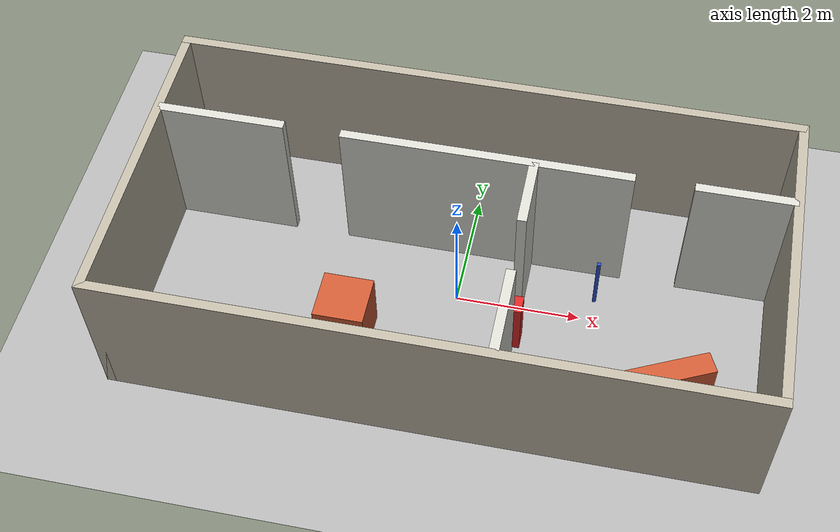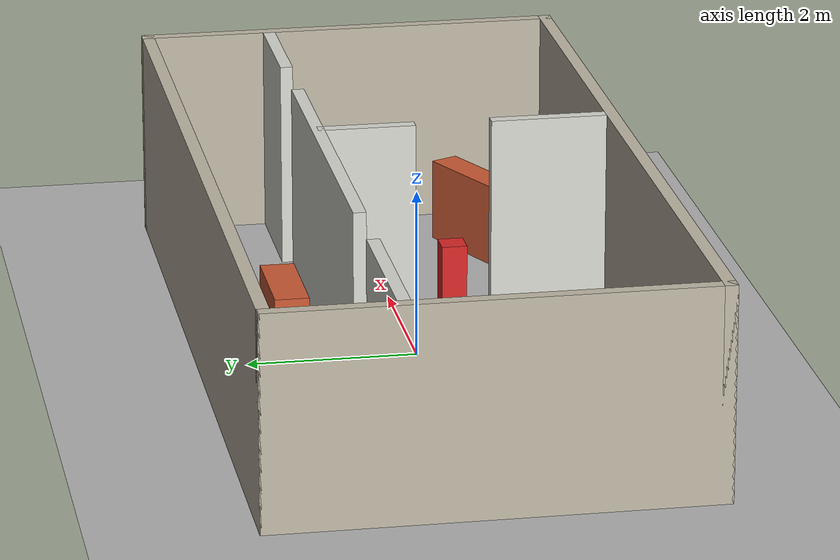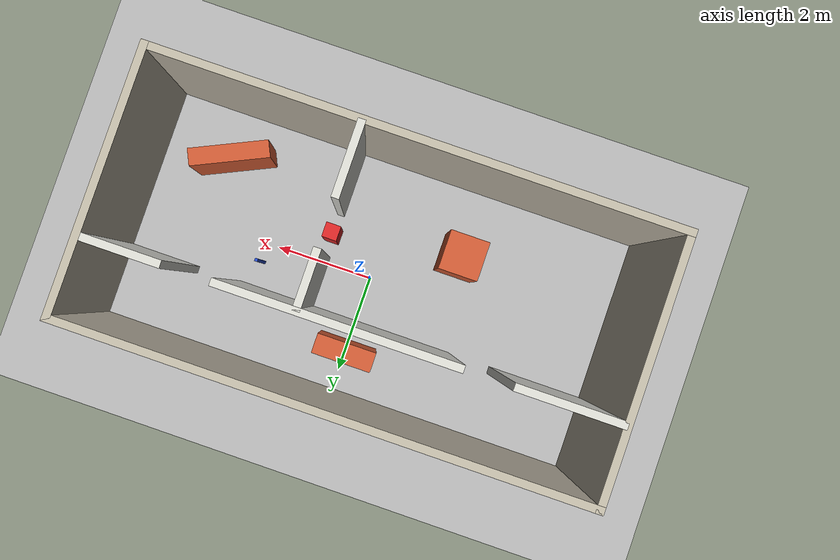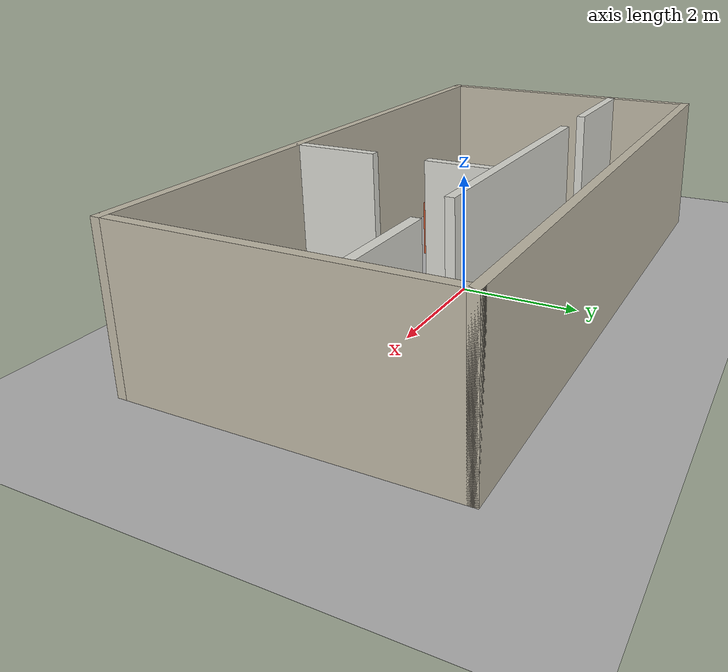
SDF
<?xml version="1.0" ?>
<sdf version="1.9">
  <world name="default">

    <plugin filename="gz-sim-physics-system" name="gz::sim::systems::Physics"/>
    <plugin filename="gz-sim-user-commands-system" name="gz::sim::systems::UserCommands"/>
    <plugin filename="gz-sim-scene-broadcaster-system" name="gz::sim::systems::SceneBroadcaster"/>

    <plugin filename="gz-sim-sensors-system" name="gz::sim::systems::Sensors">
      <render_engine>ogre2</render_engine>
    </plugin>

    <light name="sun" type="directional">
      <cast_shadows>true</cast_shadows>
      <pose>0 0 10 0 0 0</pose>
      <diffuse>0.8 0.8 0.8 1</diffuse>
      <specular>0.2 0.2 0.2 1</specular>
      <direction>-0.5 0.1 -0.9</direction>
    </light>

    <model name="ground_plane">
      <static>true</static>
      <link name="link">
        <collision name="collision">
          <geometry>
            <plane>
              <normal>0 0 1</normal>
              <size>100 100</size>
            </plane>
          </geometry>
        </collision>
        <visual name="visual">
          <geometry>
            <plane>
              <normal>0 0 1</normal>
              <size>100 100</size>
            </plane>
          </geometry>
          <material>
            <ambient>0.7 0.7 0.7 1</ambient>
            <diffuse>0.7 0.7 0.7 1</diffuse>
          </material>
        </visual>
      </link>
    </model>

    <model name="wall_south">
      <static>true</static>
      <pose>0 -2.5 1.25 0 0 0</pose>
      <link name="link">
        <collision name="collision"><geometry><box><size>10.15 0.15 2.5</size></box></geometry></collision>
        <visual name="visual">
          <geometry><box><size>10.15 0.15 2.5</size></box></geometry>
          <material><ambient>0.75 0.72 0.65 1</ambient><diffuse>0.75 0.72 0.65 1</diffuse></material>
        </visual>
      </link>
    </model>

    <model name="wall_north">
      <static>true</static>
      <pose>0 2.5 1.25 0 0 0</pose>
      <link name="link">
        <collision name="collision"><geometry><box><size>10.15 0.15 2.5</size></box></geometry></collision>
        <visual name="visual">
          <geometry><box><size>10.15 0.15 2.5</size></box></geometry>
          <material><ambient>0.75 0.72 0.65 1</ambient><diffuse>0.75 0.72 0.65 1</diffuse></material>
        </visual>
      </link>
    </model>

    <model name="wall_west">
      <static>true</static>
      <pose>-5 0 1.25 0 0 0</pose>
      <link name="link">
        <collision name="collision"><geometry><box><size>0.15 5.15 2.5</size></box></geometry></collision>
        <visual name="visual">
          <geometry><box><size>0.15 5.15 2.5</size></box></geometry>
          <material><ambient>0.75 0.72 0.65 1</ambient><diffuse>0.75 0.72 0.65 1</diffuse></material>
        </visual>
      </link>
    </model>

    <model name="wall_east">
      <static>true</static>
      <pose>5 0 1.25 0 0 0</pose>
      <link name="link">
        <collision name="collision"><geometry><box><size>0.15 5.15 2.5</size></box></geometry></collision>
        <visual name="visual">
          <geometry><box><size>0.15 5.15 2.5</size></box></geometry>
          <material><ambient>0.75 0.72 0.65 1</ambient><diffuse>0.75 0.72 0.65 1</diffuse></material>
        </visual>
      </link>
    </model>

    <model name="divider_c_1">
      <static>true</static>
      <pose>-3.975 1.0 1.25 0 0 0</pose>
      <link name="link">
        <collision name="collision"><geometry><box><size>2.05 0.15 2.5</size></box></geometry></collision>
        <visual name="visual">
          <geometry><box><size>2.05 0.15 2.5</size></box></geometry>
          <material><ambient>0.85 0.85 0.82 1</ambient><diffuse>0.85 0.85 0.82 1</diffuse></material>
        </visual>
      </link>
    </model>

    <model name="divider_c_2">
      <static>true</static>
      <pose>0.25 1.0 1.25 0 0 0</pose>
      <link name="link">
        <collision name="collision"><geometry><box><size>4.6 0.15 2.5</size></box></geometry></collision>
        <visual name="visual">
          <geometry><box><size>4.6 0.15 2.5</size></box></geometry>
          <material><ambient>0.85 0.85 0.82 1</ambient><diffuse>0.85 0.85 0.82 1</diffuse></material>
        </visual>
      </link>
    </model>

    <model name="divider_c_3">
      <static>true</static>
      <pose>4.225 1.0 1.25 0 0 0</pose>
      <link name="link">
        <collision name="collision"><geometry><box><size>1.55 0.15 2.5</size></box></geometry></collision>
        <visual name="visual">
          <geometry><box><size>1.55 0.15 2.5</size></box></geometry>
          <material><ambient>0.85 0.85 0.82 1</ambient><diffuse>0.85 0.85 0.82 1</diffuse></material>
        </visual>
      </link>
    </model>

    <model name="divider_ab_1">
      <static>true</static>
      <pose>1.0 -1.775 1.25 0 0 0</pose>
      <link name="link">
        <collision name="collision"><geometry><box><size>0.15 1.45 2.5</size></box></geometry></collision>
        <visual name="visual">
          <geometry><box><size>0.15 1.45 2.5</size></box></geometry>
          <material><ambient>0.85 0.85 0.82 1</ambient><diffuse>0.85 0.85 0.82 1</diffuse></material>
        </visual>
      </link>
    </model>

    <model name="divider_ab_2">
      <static>true</static>
      <pose>1.0 0.425 1.25 0 0 0</pose>
      <link name="link">
        <collision name="collision"><geometry><box><size>0.15 1.15 2.5</size></box></geometry></collision>
        <visual name="visual">
          <geometry><box><size>0.15 1.15 2.5</size></box></geometry>
          <material><ambient>0.85 0.85 0.82 1</ambient><diffuse>0.85 0.85 0.82 1</diffuse></material>
        </visual>
      </link>
    </model>

    <!-- 走廊中段横躺 1.2 m：南侧只剩 0.275 m（过不去），北侧 0.675 m -->
    <model name="obs_corridor">
      <static>true</static>
      <pose>0.0 1.55 0.5 0 0 0</pose>
      <link name="link">
        <collision name="collision"><geometry><box><size>1.20 0.40 1.0</size></box></geometry></collision>
        <visual name="visual">
          <geometry><box><size>1.20 0.40 1.0</size></box></geometry>
          <material><ambient>0.80 0.35 0.20 1</ambient><diffuse>0.80 0.35 0.20 1</diffuse></material>
        </visual>
      </link>
    </model>

    <!-- 房间 A 正中：挡住出生点 (0,0) → 门A 的直线 -->
    <model name="obs_roomA_block">
      <static>true</static>
      <pose>-1.6 -1.0 0.5 0 0 0</pose>
      <link name="link">
        <collision name="collision"><geometry><box><size>0.80 0.80 1.0</size></box></geometry></collision>
        <visual name="visual">
          <geometry><box><size>0.80 0.80 1.0</size></box></geometry>
          <material><ambient>0.80 0.35 0.20 1</ambient><diffuse>0.80 0.35 0.20 1</diffuse></material>
        </visual>
      </link>
    </model>

    <!-- 塞在门 AB 正中间：门宽 0.9，柱子 0.3，两侧各剩 0.300 m < 车宽 0.37
         → 这个门对机器人等于封死，房间A ↔ 房间B 必须绕走廊 -->
    <model name="obs_door_ab">
      <static>true</static>
      <pose>1.0 -0.6 0.5 0 0 0</pose>
      <link name="link">
        <collision name="collision"><geometry><box><size>0.30 0.30 1.0</size></box></geometry></collision>
        <visual name="visual">
          <geometry><box><size>0.30 0.30 1.0</size></box></geometry>
          <material><ambient>0.85 0.15 0.15 1</ambient><diffuse>0.85 0.15 0.15 1</diffuse></material>
        </visual>
      </link>
    </model>

    <!-- 绕 z 转 25°：检验 SLAM 对斜墙的还原 + 规划器对非轴对齐障碍的避让 -->
    <model name="obs_roomB_slant">
      <static>true</static>
      <pose>3.4 -1.4 0.5 0 0 0.4363323</pose>
      <link name="link">
        <collision name="collision"><geometry><box><size>1.60 0.35 1.0</size></box></geometry></collision>
        <visual name="visual">
          <geometry><box><size>1.60 0.35 1.0</size></box></geometry>
          <material><ambient>0.80 0.35 0.20 1</ambient><diffuse>0.80 0.35 0.20 1</diffuse></material>
        </visual>
      </link>
    </model>

    <!-- 6 cm 见方的细杆：检验细障碍物能不能进图、会不会被规划器忽略 -->
    <model name="obs_pole">
      <static>true</static>
      <pose>2.2 0.4 0.5 0 0 0</pose>
      <link name="link">
        <collision name="collision"><geometry><box><size>0.06 0.06 1.0</size></box></geometry></collision>
        <visual name="visual">
          <geometry><box><size>0.06 0.06 1.0</size></box></geometry>
          <material><ambient>0.15 0.30 0.80 1</ambient><diffuse>0.15 0.30 0.80 1</diffuse></material>
        </visual>
      </link>
    </model>

  </world>
</sdf>
